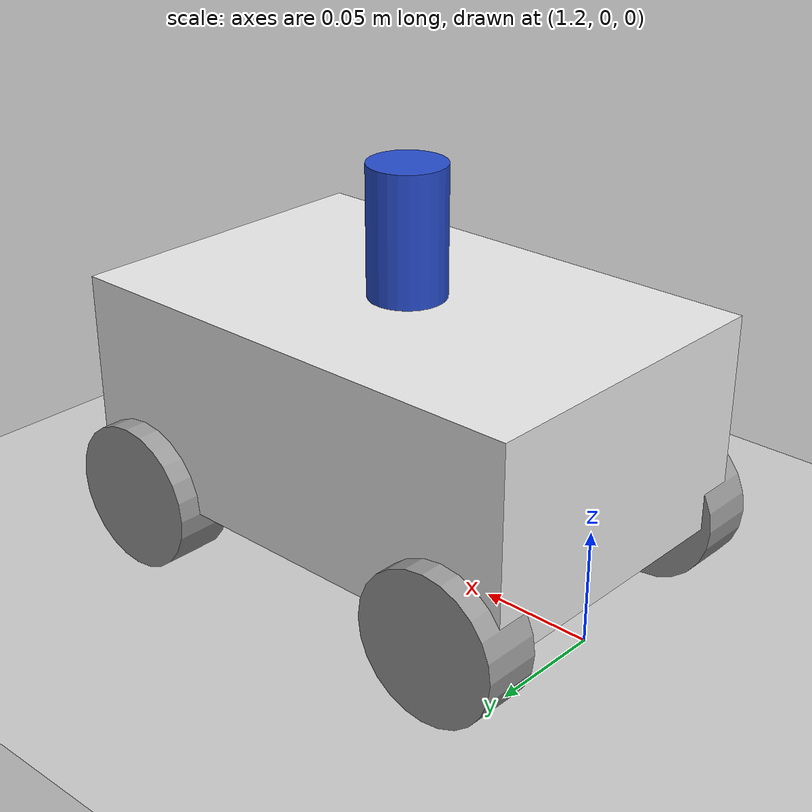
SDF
<sdf version="1.6">
 <world name="default">
  <model name="ground_plane">
   <static>1</static>
   <link name="link">
    <collision name="collision">
     <geometry><plane><normal>0 0 1</normal><size>100 100</size></plane></geometry>
     <surface>
      <contact><collide_bitmask>65535</collide_bitmask></contact>
      <friction><ode><mu>100</mu><mu2>50</mu2></ode></friction>
     </surface>
    </collision>
    <visual name="visual">
     <cast_shadows>0</cast_shadows>
     <geometry><plane><normal>0 0 1</normal><size>100 100</size></plane></geometry>
     <material>
      <script><uri>file://media/materials/scripts/gazebo.material</uri><name>Gazebo/Grey</name></script>
     </material>
    </visual>
   </link>
  </model>
  <model name="Robot2">
   <link name="base_link">
    <inertial>
     <mass>0.7</mass>
     <inertia>
      <ixx>0.00169896</ixx>
      <ixy>0</ixy>
      <ixz>0</ixz>
      <iyy>0.00329583</iyy>
      <iyz>0</iyz>
      <izz>0.00404979</izz>
     </inertia>
    </inertial>
    <collision name="base_link_collision"><geometry><box><size>0.22 0.145 0.09</size></box></geometry></collision>
    <collision name="base_link_fixed_joint_lump__ydlidar_link_collision_1">
     <pose>0 0 0.0725 0 -0 0</pose>
     <geometry><cylinder><length>0.055</length><radius>0.0165</radius></cylinder></geometry>
    </collision>
    <visual name="base_link_visual">
     <geometry><box><size>0.22 0.145 0.09</size></box></geometry>
     <material>
      <script><name>Gazebo/White</name><uri>file://media/materials/scripts/gazebo.material</uri></script>
     </material>
    </visual>
    <visual name="base_link_fixed_joint_lump__ydlidar_link_visual_1">
     <pose>0 0 0.0725 0 -0 0</pose>
     <geometry><cylinder><length>0.055</length><radius>0.0165</radius></cylinder></geometry>
     <material>
      <script><name>Gazebo/Blue</name><uri>file://media/materials/scripts/gazebo.material</uri></script>
     </material>
    </visual>
    <sensor name="camera" type="camera">
     <camera name="head">
      <horizontal_fov>1.39626</horizontal_fov>
      <image><width>800</width><height>800</height><format>R8G8B8</format></image>
      <clip><near>0.02</near><far>300</far></clip>
     </camera>
     <always_on>1</always_on>
     <update_rate>30</update_rate>
     <visualize>1</visualize>
     <plugin name="camera_controller" filename="libgazebo_ros_camera.so">
      <alwaysOn>1</alwaysOn>
      <updateRate>0.0</updateRate>
      <cameraName>iris/camera</cameraName>
      <imageTopicName>image_raw</imageTopicName>
      <cameraInfoTopicName>camera_info</cameraInfoTopicName>
      <frameName>camera_link</frameName>
      <hackBaseline>0.07</hackBaseline>
      <distortionK1>0.0</distortionK1>
      <distortionK2>0.0</distortionK2>
      <distortionK3>0.0</distortionK3>
      <distortionT1>0.0</distortionT1>
      <distortionT2>0.0</distortionT2>
      <robotNamespace>Robot2</robotNamespace>
     </plugin>
     <pose>0 0 0.0725 0 -0 0</pose>
    </sensor>
   </link>
   <link name="back_left_wheel">
    <pose>-0.0825 0.07 -0.045 0 -0 0</pose>
    <inertial>
     <mass>0.03</mass>
     <inertia>
      <ixx>9.2425e-06</ixx>
      <ixy>0</ixy>
      <ixz>0</ixz>
      <iyy>9.2425e-06</iyy>
      <iyz>0</iyz>
      <izz>1.536e-05</izz>
     </inertia>
    </inertial>
    <collision name="back_left_wheel_collision">
     <pose>0 0 0 1.5708 -0 0</pose>
     <geometry><cylinder><length>0.025</length><radius>0.032</radius></cylinder></geometry>
     <surface>
      <contact><ode><kp>1e+07</kp><kd>1</kd></ode></contact>
      <friction><ode><mu>1</mu><mu2>1</mu2><fdir1>1 0 0</fdir1></ode></friction>
     </surface>
    </collision>
    <visual name="back_left_wheel_visual">
     <pose>0 0 0 1.5708 -0 0</pose>
     <geometry><cylinder><length>0.025</length><radius>0.032</radius></cylinder></geometry>
     <material>
      <script><name>Gazebo/Grey</name><uri>file://media/materials/scripts/gazebo.material</uri></script>
     </material>
    </visual>
   </link>
   <joint name="back_left_wheel_joint" type="revolute">
    <child>back_left_wheel</child>
    <parent>base_link</parent>
    <axis>
     <xyz>0 1 0</xyz>
     <limit><lower>-1e+16</lower><upper>1e+16</upper></limit>
     <dynamics><spring_reference>0</spring_reference><spring_stiffness>0</spring_stiffness></dynamics>
     <use_parent_model_frame>1</use_parent_model_frame>
    </axis>
   </joint>
   <link name="back_right_wheel">
    <pose>-0.0825 -0.07 -0.045 0 -0 0</pose>
    <inertial>
     <mass>0.03</mass>
     <inertia>
      <ixx>9.2425e-06</ixx>
      <ixy>0</ixy>
      <ixz>0</ixz>
      <iyy>9.2425e-06</iyy>
      <iyz>0</iyz>
      <izz>1.536e-05</izz>
     </inertia>
    </inertial>
    <collision name="back_right_wheel_collision">
     <pose>0 0 0 1.5708 -0 0</pose>
     <geometry><cylinder><length>0.025</length><radius>0.032</radius></cylinder></geometry>
     <surface>
      <contact><ode><kp>1e+07</kp><kd>1</kd></ode></contact>
      <friction><ode><mu>1</mu><mu2>1</mu2><fdir1>1 0 0</fdir1></ode></friction>
     </surface>
    </collision>
    <visual name="back_right_wheel_visual">
     <pose>0 0 0 1.5708 -0 0</pose>
     <geometry><cylinder><length>0.025</length><radius>0.032</radius></cylinder></geometry>
     <material>
      <script><name>Gazebo/Grey</name><uri>file://media/materials/scripts/gazebo.material</uri></script>
     </material>
    </visual>
   </link>
   <joint name="back_right_wheel_joint" type="revolute">
    <child>back_right_wheel</child>
    <parent>base_link</parent>
    <axis>
     <xyz>0 1 0</xyz>
     <limit><lower>-1e+16</lower><upper>1e+16</upper></limit>
     <dynamics><spring_reference>0</spring_reference><spring_stiffness>0</spring_stiffness></dynamics>
     <use_parent_model_frame>1</use_parent_model_frame>
    </axis>
   </joint>
   <link name="front_left_wheel">
    <pose>0.0825 0.07 -0.045 0 -0 0</pose>
    <inertial>
     <mass>0.03</mass>
     <inertia>
      <ixx>9.2425e-06</ixx>
      <ixy>0</ixy>
      <ixz>0</ixz>
      <iyy>9.2425e-06</iyy>
      <iyz>0</iyz>
      <izz>1.536e-05</izz>
     </inertia>
    </inertial>
    <collision name="front_left_wheel_collision">
     <pose>0 0 0 1.5708 -0 0</pose>
     <geometry><cylinder><length>0.025</length><radius>0.032</radius></cylinder></geometry>
     <surface>
      <contact><ode><kp>1e+07</kp><kd>1</kd></ode></contact>
      <friction><ode><mu>1</mu><mu2>1</mu2><fdir1>1 0 0</fdir1></ode></friction>
     </surface>
    </collision>
    <visual name="front_left_wheel_visual">
     <pose>0 0 0 1.5708 -0 0</pose>
     <geometry><cylinder><length>0.025</length><radius>0.032</radius></cylinder></geometry>
     <material>
      <script><name>Gazebo/Grey</name><uri>file://media/materials/scripts/gazebo.material</uri></script>
     </material>
    </visual>
   </link>
   <joint name="front_left_wheel_joint" type="revolute">
    <child>front_left_wheel</child>
    <parent>base_link</parent>
    <axis>
     <xyz>0 1 0</xyz>
     <limit><lower>-1e+16</lower><upper>1e+16</upper></limit>
     <dynamics><spring_reference>0</spring_reference><spring_stiffness>0</spring_stiffness></dynamics>
     <use_parent_model_frame>1</use_parent_model_frame>
    </axis>
   </joint>
   <link name="front_right_wheel">
    <pose>0.0825 -0.07 -0.045 0 -0 0</pose>
    <inertial>
     <mass>0.03</mass>
     <inertia>
      <ixx>9.2425e-06</ixx>
      <ixy>0</ixy>
      <ixz>0</ixz>
      <iyy>9.2425e-06</iyy>
      <iyz>0</iyz>
      <izz>1.536e-05</izz>
     </inertia>
    </inertial>
    <collision name="front_right_wheel_collision">
     <pose>0 0 0 1.5708 -0 0</pose>
     <geometry><cylinder><length>0.025</length><radius>0.032</radius></cylinder></geometry>
     <surface>
      <contact><ode><kp>1e+07</kp><kd>1</kd></ode></contact>
      <friction><ode><mu>1</mu><mu2>1</mu2><fdir1>1 0 0</fdir1></ode></friction>
     </surface>
    </collision>
    <visual name="front_right_wheel_visual">
     <pose>0 0 0 1.5708 -0 0</pose>
     <geometry><cylinder><length>0.025</length><radius>0.032</radius></cylinder></geometry>
     <material>
      <script><name>Gazebo/Grey</name><uri>file://media/materials/scripts/gazebo.material</uri></script>
     </material>
    </visual>
   </link>
   <joint name="front_right_wheel_joint" type="revolute">
    <child>front_right_wheel</child>
    <parent>base_link</parent>
    <axis>
     <xyz>0 1 0</xyz>
     <limit><lower>-1e+16</lower><upper>1e+16</upper></limit>
     <dynamics><spring_reference>0</spring_reference><spring_stiffness>0</spring_stiffness></dynamics>
     <use_parent_model_frame>1</use_parent_model_frame>
    </axis>
   </joint>
   <static>0</static>
   <plugin name="skid_steer_drive_controller" filename="libgazebo_ros_skid_steer_drive.so">
    <rosDebugLevel>Debug</rosDebugLevel>
    <publishWheelTF>0</publishWheelTF>
    <publishTf>1</publishTf>
    <publishWheelJointState>0</publishWheelJointState>
    <alwaysOn>1</alwaysOn>
    <updateRate>100.0</updateRate>
    <leftFrontJoint>front_left_wheel_joint</leftFrontJoint>
    <rightFrontJoint>front_right_wheel_joint</rightFrontJoint>
    <leftRearJoint>back_left_wheel_joint</leftRearJoint>
    <rightRearJoint>back_right_wheel_joint</rightRearJoint>
    <wheelSeparation>0.145</wheelSeparation>
    <wheelDiameter>0.064</wheelDiameter>
    <broadcastTF>1</broadcastTF>
    <wheelTorque>2</wheelTorque>
    <wheelAcceleration>1.8</wheelAcceleration>
    <commandTopic>cmd_vel</commandTopic>
    <odometryFrame>odom</odometryFrame>
    <odometryTopic>odom</odometryTopic>
    <robotBaseFrame>base_footprint</robotBaseFrame>
    <robotNamespace>Robot2</robotNamespace>
   </plugin>
   <plugin name="imu_plugin" filename="libgazebo_ros_imu.so">
    <alwaysOn>1</alwaysOn>
    <bodyName>base_link</bodyName>
    <topicName>imu</topicName>
    <serviceName>imu_service</serviceName>
    <gaussianNoise>0.0</gaussianNoise>
    <updateRate>20.0</updateRate>
    <robotNamespace>Robot2</robotNamespace>
   </plugin>
   <pose>1.2959 -5.4e-05 0.077 0 -0 0.000628</pose>
  </model>
 </world>
</sdf>
